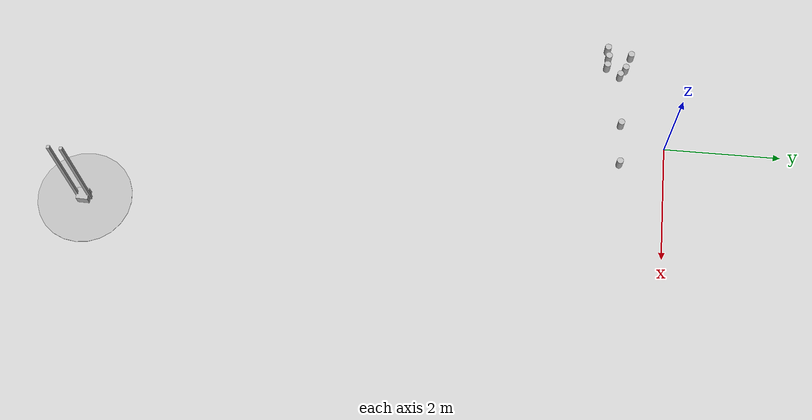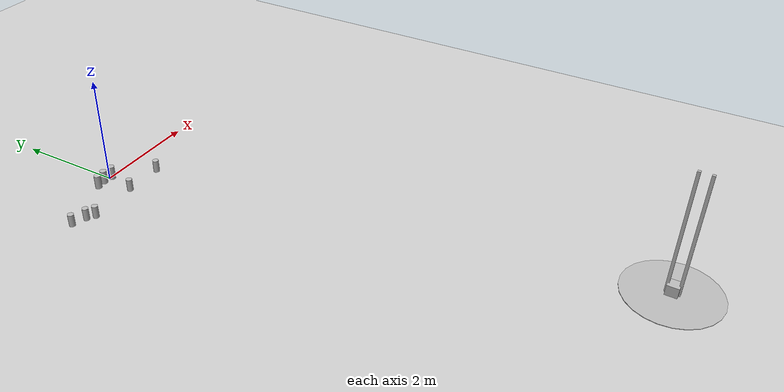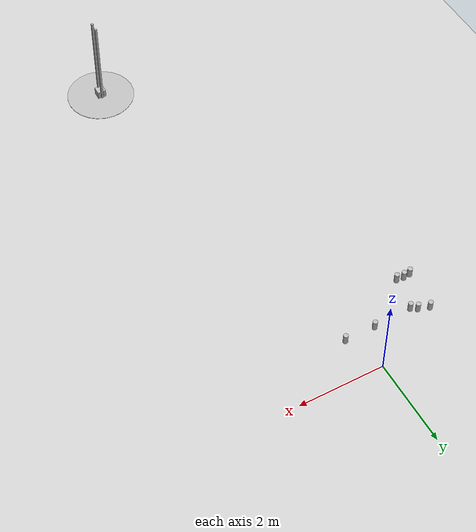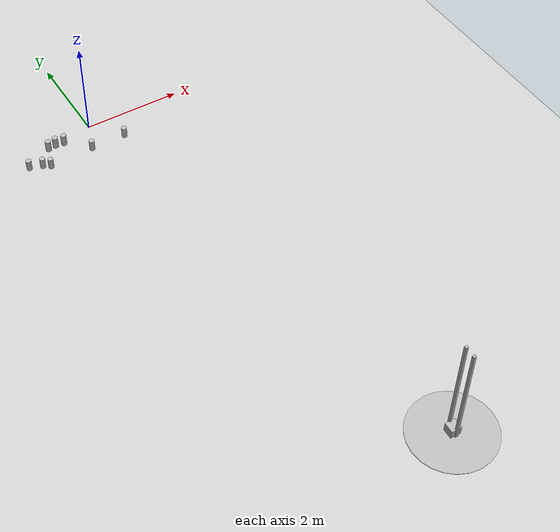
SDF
<sdf version="1.6">
 <world name="default">
  <model name="ground_plane">
   <static>1</static>
   <link name="link">
    <collision name="collision">
     <geometry><plane><normal>0 0 1</normal><size>100 100</size></plane></geometry>
     <surface><friction><ode><mu>100</mu><mu2>50</mu2></ode></friction></surface>
    </collision>
    <visual name="visual">
     <transparency>1</transparency>
     <cast_shadows>0</cast_shadows>
     <geometry><plane><normal>0 0 1</normal><size>100 100</size></plane></geometry>
     <material>
      <script><uri>file://media/materials/scripts/gazebo.material</uri><name>Gazebo/Grey</name></script>
     </material>
    </visual>
   </link>
  </model>
  <model name="beer">
   <link name="link">
    <pose>0 0 0.115 0 -0 0</pose>
    <inertial>
     <mass>0.39</mass>
     <inertia><ixx>0.00058</ixx><ixy>0</ixy><ixz>0</ixz><iyy>0.00058</iyy><iyz>0</iyz><izz>0.00019</izz></inertia>
    </inertial>
    <collision name="collision">
     <geometry><cylinder><radius>0.055</radius><length>0.23</length></cylinder></geometry>
    </collision>
    <visual name="visual">
     <geometry><cylinder><radius>0.055</radius><length>0.23</length></cylinder></geometry>
     <material>
      <script>
       <uri>model://beer/materials/scripts</uri>
       <uri>model://beer/materials/textures</uri>
       <name>Beer/Diffuse</name>
      </script>
     </material>
    </visual>
   </link>
   <pose>-1.14608 -1.12886 0.964763 -2.7e-05 -6e-06 -0.02319</pose>
  </model>
  <model name="beer_0">
   <link name="link">
    <pose>0 0 0.115 0 -0 0</pose>
    <inertial>
     <mass>0.39</mass>
     <inertia><ixx>0.00058</ixx><ixy>0</ixy><ixz>0</ixz><iyy>0.00058</iyy><iyz>0</iyz><izz>0.00019</izz></inertia>
    </inertial>
    <collision name="collision">
     <geometry><cylinder><radius>0.055</radius><length>0.23</length></cylinder></geometry>
    </collision>
    <visual name="visual">
     <geometry><cylinder><radius>0.055</radius><length>0.23</length></cylinder></geometry>
     <material>
      <script>
       <uri>model://beer/materials/scripts</uri>
       <uri>model://beer/materials/textures</uri>
       <name>Beer/Diffuse</name>
      </script>
     </material>
    </visual>
   </link>
   <pose>-1.30138 -1.14652 0.964763 2.9e-05 -9e-06 -0.145982</pose>
  </model>
  <model name="beer_1">
   <link name="link">
    <pose>0 0 0.115 0 -0 0</pose>
    <inertial>
     <mass>0.39</mass>
     <inertia><ixx>0.00058</ixx><ixy>0</ixy><ixz>0</ixz><iyy>0.00058</iyy><iyz>0</iyz><izz>0.00019</izz></inertia>
    </inertial>
    <collision name="collision">
     <geometry><cylinder><radius>0.055</radius><length>0.23</length></cylinder></geometry>
    </collision>
    <visual name="visual">
     <geometry><cylinder><radius>0.055</radius><length>0.23</length></cylinder></geometry>
     <material>
      <script>
       <uri>model://beer/materials/scripts</uri>
       <uri>model://beer/materials/textures</uri>
       <name>Beer/Diffuse</name>
      </script>
     </material>
    </visual>
   </link>
   <pose>-0.980585 -1.14729 0.964763 1e-05 -1.8e-05 -0.021902</pose>
  </model>
  <model name="beer_2">
   <link name="link">
    <pose>0 0 0.115 0 -0 0</pose>
    <inertial>
     <mass>0.39</mass>
     <inertia><ixx>0.00058</ixx><ixy>0</ixy><ixz>0</ixz><iyy>0.00058</iyy><iyz>0</iyz><izz>0.00019</izz></inertia>
    </inertial>
    <collision name="collision">
     <geometry><cylinder><radius>0.055</radius><length>0.23</length></cylinder></geometry>
    </collision>
    <visual name="visual">
     <geometry><cylinder><radius>0.055</radius><length>0.23</length></cylinder></geometry>
     <material>
      <script>
       <uri>model://beer/materials/scripts</uri>
       <uri>model://beer/materials/textures</uri>
       <name>Beer/Diffuse</name>
      </script>
     </material>
    </visual>
   </link>
   <pose>-1.33713 -0.746718 0.189796 2.6e-05 0.000105 -0.003505</pose>
  </model>
  <model name="beer_3">
   <link name="link">
    <pose>0 0 0.115 0 -0 0</pose>
    <inertial>
     <mass>0.39</mass>
     <inertia><ixx>0.00058</ixx><ixy>0</ixy><ixz>0</ixz><iyy>0.00058</iyy><iyz>0</iyz><izz>0.00019</izz></inertia>
    </inertial>
    <collision name="collision">
     <geometry><cylinder><radius>0.055</radius><length>0.23</length></cylinder></geometry>
    </collision>
    <visual name="visual">
     <geometry><cylinder><radius>0.055</radius><length>0.23</length></cylinder></geometry>
     <material>
      <script>
       <uri>model://beer/materials/scripts</uri>
       <uri>model://beer/materials/textures</uri>
       <name>Beer/Diffuse</name>
      </script>
     </material>
    </visual>
   </link>
   <pose>-1.2027 -0.836305 0.189801 5e-06 2.1e-05 -0.004128</pose>
  </model>
  <model name="mass_on_rails">
   <link name="base">
    <inertial>
     <mass>100</mass>
     <inertia><ixx>1</ixx><ixy>0</ixy><ixz>0</ixz><iyy>1</iyy><iyz>0</iyz><izz>1</izz></inertia>
    </inertial>
    <visual name="vis_base">
     <pose>0 0 0.01 0 -0 0</pose>
     <geometry><cylinder><radius>0.8</radius><length>0.01</length></cylinder></geometry>
    </visual>
    <collision name="col_base">
     <pose>0 0 0.01 0 -0 0</pose>
     <geometry><cylinder><radius>0.8</radius><length>0.01</length></cylinder></geometry>
    </collision>
    <visual name="vis_rail1">
     <pose>0 0.1 1.1 0 -0 0</pose>
     <geometry><box><size>0.05 0.05 2.2</size></box></geometry>
    </visual>
    <collision name="col_rail1">
     <pose>0 0.1 1.1 0 -0 0</pose>
     <geometry><box><size>0.05 0.05 2.2</size></box></geometry>
    </collision>
    <visual name="vis_rail2">
     <pose>0 -0.1 1.1 0 -0 0</pose>
     <geometry><box><size>0.05 0.05 2.2</size></box></geometry>
    </visual>
    <collision name="col_rail2">
     <pose>0 -0.1 1.1 0 -0 0</pose>
     <geometry><box><size>0.05 0.05 2.2</size></box></geometry>
    </collision>
   </link>
   <link name="mass">
    <inertial>
     <mass>0.1</mass>
     <pose>0 0 0.1 0 -0 0</pose>
     <inertia><ixx>0.00067</ixx><ixy>0</ixy><ixz>0</ixz><iyy>0.00067</iyy><iyz>0</iyz><izz>0.00067</izz></inertia>
    </inertial>
    <visual name="visual">
     <pose>0 0 0.1 0 -0 0</pose>
     <geometry><box><size>0.2 0.2 0.2</size></box></geometry>
    </visual>
    <collision name="collision">
     <pose>0 0 0.1 0 -0 0</pose>
     <geometry><box><size>0.2 0.2 0.2</size></box></geometry>
    </collision>
   </link>
   <joint name="joint" type="prismatic">
    <parent>base</parent>
    <child>mass</child>
    <axis>
     <dynamics>
      <damping>0.01</damping>
      <friction>0.01</friction>
      <spring_reference>0</spring_reference>
      <spring_stiffness>0</spring_stiffness>
     </dynamics>
     <xyz>0 0 1</xyz>
     <limit><lower>0</lower><upper>2</upper></limit>
     <use_parent_model_frame>0</use_parent_model_frame>
    </axis>
   </joint>
   <pose>1.77498 -9.77244 0.189796 4.5e-05 1.1e-05 -0.030658</pose>
  </model>
  <model name="beer_4">
   <link name="link">
    <pose>0 0 0.115 0 -0 0</pose>
    <inertial>
     <mass>0.39</mass>
     <inertia><ixx>0.00058</ixx><ixy>0</ixy><ixz>0</ixz><iyy>0.00058</iyy><iyz>0</iyz><izz>0.00019</izz></inertia>
    </inertial>
    <collision name="collision">
     <geometry><cylinder><radius>0.055</radius><length>0.23</length></cylinder></geometry>
    </collision>
    <visual name="visual">
     <geometry><cylinder><radius>0.055</radius><length>0.23</length></cylinder></geometry>
     <material>
      <script>
       <uri>model://beer/materials/scripts</uri>
       <uri>model://beer/materials/textures</uri>
       <name>Beer/Diffuse</name>
      </script>
     </material>
    </visual>
   </link>
   <pose>-0.287299 -0.791432 0.189795 7.5e-05 4.3e-05 -0.979861</pose>
  </model>
  <model name="beer_7">
   <link name="link">
    <pose>0 0 0.115 0 -0 0</pose>
    <inertial>
     <mass>0.39</mass>
     <inertia><ixx>0.00058</ixx><ixy>0</ixy><ixz>0</ixz><iyy>0.00058</iyy><iyz>0</iyz><izz>0.00019</izz></inertia>
    </inertial>
    <collision name="collision">
     <geometry><cylinder><radius>0.055</radius><length>0.23</length></cylinder></geometry>
    </collision>
    <visual name="visual">
     <geometry><cylinder><radius>0.055</radius><length>0.23</length></cylinder></geometry>
     <material>
      <script>
       <uri>model://beer/materials/scripts</uri>
       <uri>model://beer/materials/textures</uri>
       <name>Beer/Diffuse</name>
      </script>
     </material>
    </visual>
   </link>
   <pose>-1.58956 -0.661684 0.189795 2.4e-05 9e-05 -0.000197</pose>
  </model>
  <model name="beer_8">
   <link name="link">
    <pose>0 0 0.115 0 -0 0</pose>
    <inertial>
     <mass>0.39</mass>
     <inertia><ixx>0.00058</ixx><ixy>0</ixy><ixz>0</ixz><iyy>0.00058</iyy><iyz>0</iyz><izz>0.00019</izz></inertia>
    </inertial>
    <collision name="collision">
     <geometry><cylinder><radius>0.055</radius><length>0.23</length></cylinder></geometry>
    </collision>
    <visual name="visual">
     <geometry><cylinder><radius>0.055</radius><length>0.23</length></cylinder></geometry>
     <material>
      <script>
       <uri>model://beer/materials/scripts</uri>
       <uri>model://beer/materials/textures</uri>
       <name>Beer/Diffuse</name>
      </script>
     </material>
    </visual>
   </link>
   <pose>0.432265 -0.790429 0.189801 5e-06 2.4e-05 0.00011</pose>
  </model>
 </world>
</sdf>
